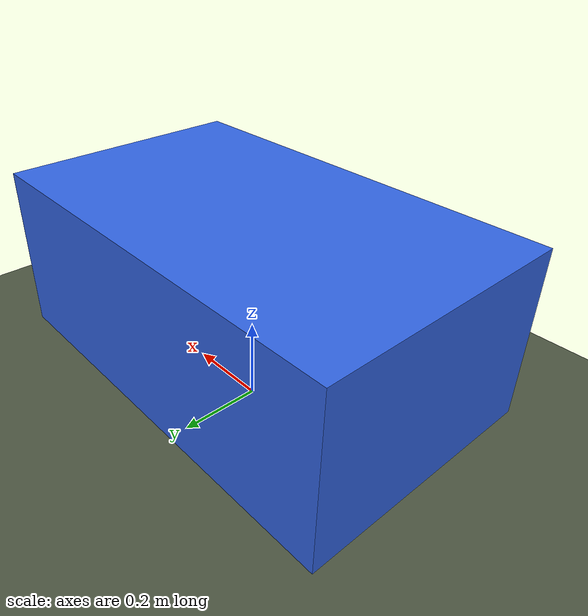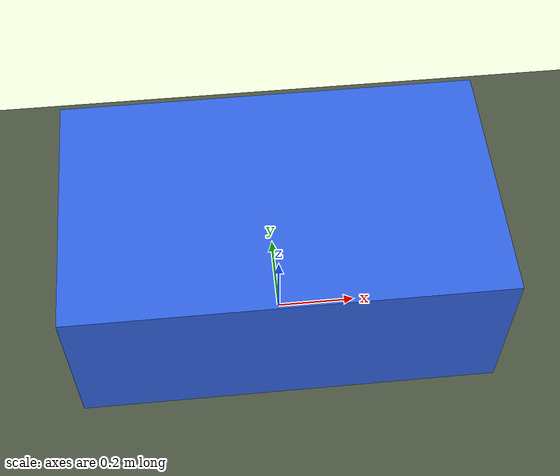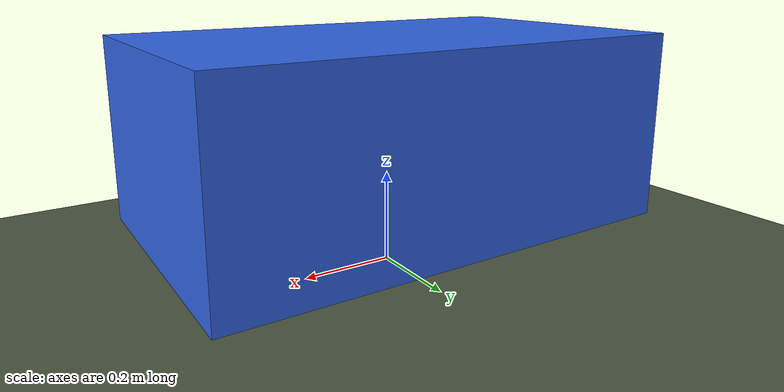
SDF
<?xml version="1.0"?>
<!-- 矩形巡航专用空场景：不含障碍墙体，避免 AUV 航路穿墙 -->
<sdf version="1.6">
<world name="default">
  <!-- /clock 由 launch 里的 gzserver -s libgazebo_ros_init.so 提供 -->
  <!-- 中性浮力：关闭重力，详见 underwater.world 中的说明 -->
  <gravity>0 0 0</gravity>
  <physics type="ode">
    <max_step_size>0.001</max_step_size>
    <real_time_factor>1</real_time_factor>
    <ode>
      <solver>
        <type>quick</type>
        <iters>10</iters>
      </solver>
    </ode>
  </physics>
  <scene>
    <ambient>0.12 0.22 0.32 1</ambient>
    <background>0.06 0.16 0.28 1</background>
    <shadows>false</shadows>
    <fog>
      <type>linear</type>
      <color>0.06 0.16 0.28 1</color>
      <density>0.35</density>
      <start>1.5</start>
      <end>18</end>
    </fog>
  </scene>
  <model name="ground">
    <static>true</static>
    <link name="link">
      <collision name="collision">
        <geometry><plane><normal>0 0 1</normal><size>100 100</size></plane></geometry>
      </collision>
      <visual name="visual">
        <geometry><plane><normal>0 0 1</normal><size>100 100</size></plane></geometry>
        <material>
          <ambient>0.22 0.26 0.2 1</ambient>
          <diffuse>0.3 0.34 0.26 1</diffuse>
        </material>
      </visual>
    </link>
  </model>
  <model name="auv">
    <pose>0 0 0.3 0 0 0</pose>
    <link name="base_link">
      <inertial>
        <mass>5.0</mass>
        <inertia>
          <ixx>0.1</ixx>
          <iyy>0.1</iyy>
          <izz>0.05</izz>
        </inertia>
      </inertial>
      <!-- 不启用 velocity_decay：其单位是「每秒衰减比例」，
           填 0.997 会让模型每秒丢掉 99.7% 速度，几乎无法前进 -->
      <collision name="base_collision">
        <geometry><box><size>1.0 0.6 0.4</size></box></geometry>
      </collision>
      <visual name="base_visual">
        <geometry><box><size>1.0 0.6 0.4</size></box></geometry>
        <material>
          <ambient>0.1 0.3 0.8 1</ambient>
          <diffuse>0.2 0.4 0.9 1</diffuse>
        </material>
      </visual>
      <sensor name="camera" type="camera">
        <pose>0.55 0 0 0 0 0</pose>
        <always_on>true</always_on>
        <update_rate>20</update_rate>
        <camera>
          <horizontal_fov>1.047</horizontal_fov>
          <image>
            <width>640</width>
            <height>480</height>
          </image>
          <clip>
            <near>0.1</near>
            <far>50</far>
          </clip>
        </camera>
        <plugin name="camera_controller" filename="libgazebo_ros_camera.so">
          <ros>
            <namespace>/auv/camera</namespace>
          </ros>
          <camera_name>camera</camera_name>
          <frame_name>base_link</frame_name>
        </plugin>
      </sensor>
    </link>

    <plugin name="planar_move" filename="libgazebo_ros_planar_move.so">
      <ros>
        <namespace>/auv</namespace>
      </ros>
      <link_name>base_link</link_name>
      <topic_name>cmd_vel</topic_name>
      <odom_topic>odom</odom_topic>
      <odom_frame>odom</odom_frame>
      <robot_base_frame>base_link</robot_base_frame>
      <publish_odom>true</publish_odom>
      <publish_tf>true</publish_tf>
    </plugin>
  </model>

</world>
</sdf>
